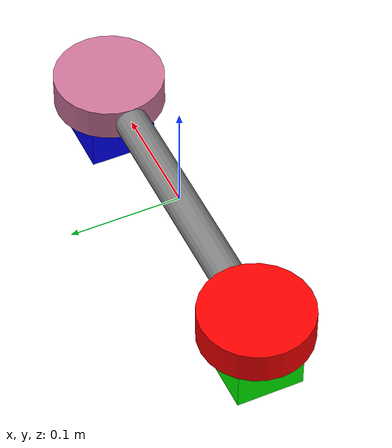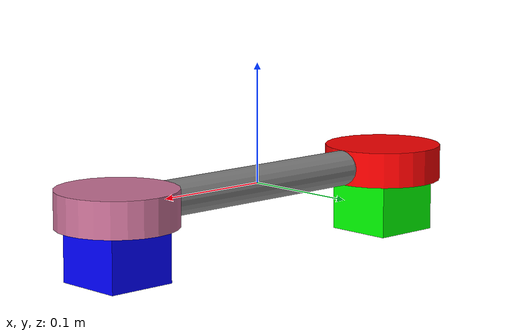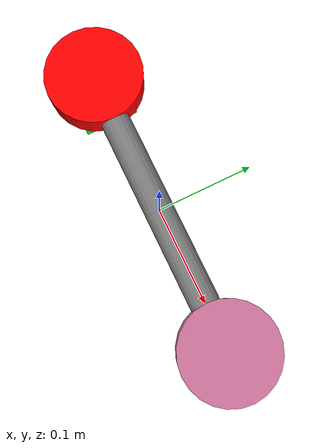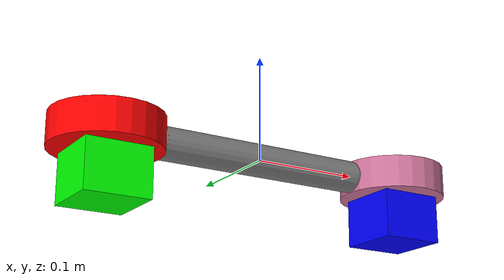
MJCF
<!-- The Lappa robot -->
<mujoco model="Test">
	<worldbody>
		<body name="root">
			<freejoint />
			<body name="base">
				<geom name="arm" type="capsule" fromto="-.1 0 0 .1 0 0" size=".015" rgba="0.5 0.5 0.5 1" />
				<body name="a_module" pos="-.1 0 0">
					<site name="a_propeller" pos="-.05 0 0" />
					<joint name="a_h2" type="hinge" axis="0 1 0" limited="true" range="-45 45" />
					<geom name="a_module" type="cylinder" size=".05 .015" pos="-.05 0 0" rgba="1 0 0 1" />
					<joint name="a_h1" type="hinge" axis="0 0 1" pos="-.05 0 -.03" />
					<body name="a_chamber">
						<geom name="a_chamber" type="box" size=".03 .03 .03" pos="-.05 0 -.03" rgba="0 1 0 1" />
					</body>
				</body>
				<body name="b_module" pos=".1 0 0">
					<site name="b_propeller" pos=".05 0 0" />
					<joint name="h3" type="hinge" axis="1 0 0" limited="true" range="-90 90" pos="-.1 0 0" stiffness=".5" damping="2" />
					<joint name="b_h2" type="hinge" axis="0 1 0" limited="true" range="-45 45" />
					<geom name="b_module" type="cylinder" size=".05 .015" pos=".05 0 0" rgba=".8 0.45 0.6 1" />
					<joint name="b_h1" type="hinge" axis="0 0 1" pos=".05 0 -.03" />
					<body name="b_chamber">
						<geom name="b_chamber" type="box" size=".03 .03 .03" pos=".05 0 -.03" rgba="0 0 1 1" />
					</body>
				</body>
			</body>
		</body>
	</worldbody>
	<sensor>
	</sensor>
	<actuator>
		<motor name="a_thrust" site="a_propeller" ctrllimited="true" ctrlrange="-1 1" gear="0 0 10" />
		<motor name="b_thrust" site="b_propeller" ctrllimited="true" ctrlrange="-1 1" gear="0 0 10" />
		<adhesion name="a_adhesion" body="a_chamber" ctrlrange="0 1" gain="50" />
		<adhesion name="b_adhesion" body="b_chamber" ctrlrange="0 1" gain="50" />
		<motor name="a_h1" joint="a_h1" gear="1" />
		<motor name="a_h2" joint="a_h2" gear="1" />
	</actuator>
</mujoco>
